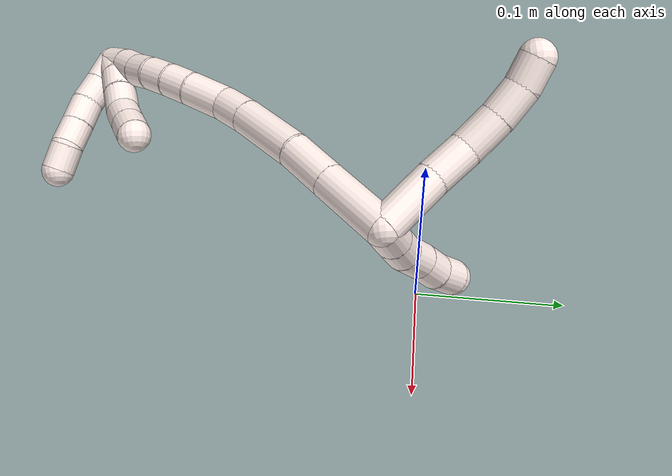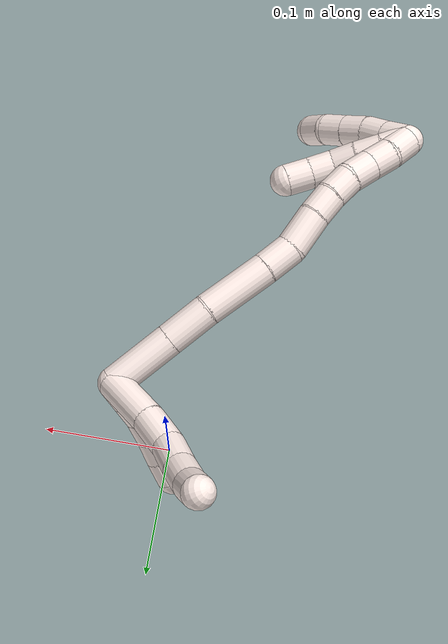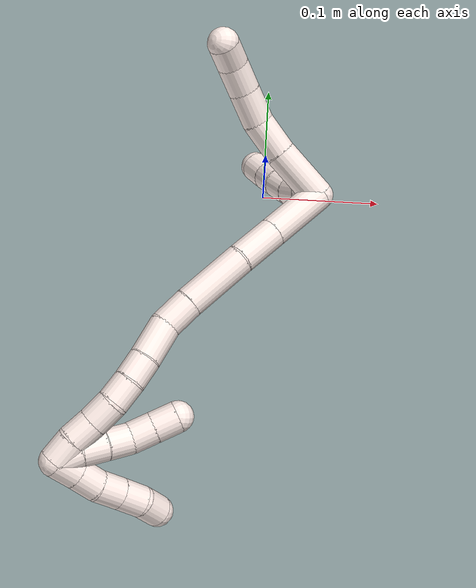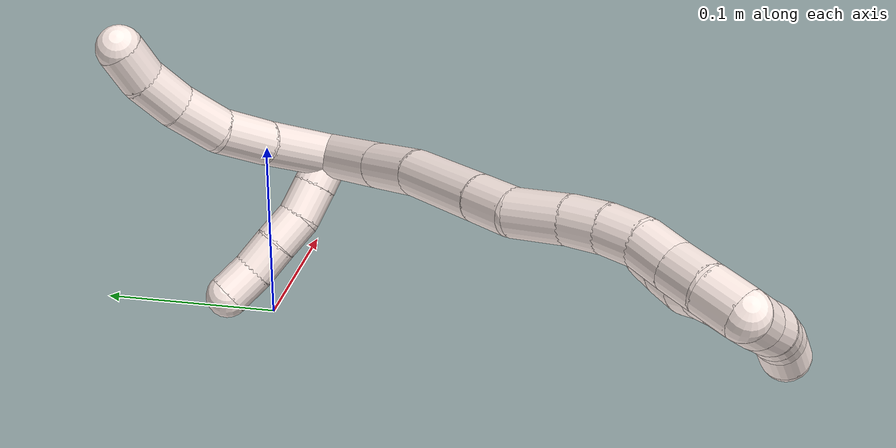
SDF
<sdf version="1.7">
 <world name="default">
  <model name="photoneo_s_sensor">
   <static>1</static>
   <pose>0 0 2 1.57079 1.57079 3.14159</pose>
   <link name="link">
    <inertial><mass>0.1</mass></inertial>
    <sensor name="sensor" type="depth">
     <update_rate>30</update_rate>
     <camera>
      <horizontal_fov>1.22</horizontal_fov>
      <image><width>1920</width><height>1200</height><format>B8G8R8</format></image>
      <clip><near>0.1</near><far>4</far></clip>
      <depth_camera><output>points</output></depth_camera>
     </camera>
     <plugin name="camera_plugin" filename="libgazebo_ros_depth_camera.so">
      <baseline>0.2</baseline>
      <alwaysOn>1</alwaysOn>
      <updateRate>0.0</updateRate>
      <cameraName>camera_ir</cameraName>
      <imageTopicName>/camera/color/image_raw</imageTopicName>
      <cameraInfoTopicName>/camera/color/camera_info</cameraInfoTopicName>
      <depthImageTopicName>/camera/depth/image_raw</depthImageTopicName>
      <depthImageCameraInfoTopicName>/camera/depth/camera_info</depthImageCameraInfoTopicName>
      <pointCloudTopicName>/camera/depth/points</pointCloudTopicName>
      <frameName>fr_optical</frameName>
      <pointCloudCutoff>0.1</pointCloudCutoff>
      <pointCloudCutoffMax>2.0</pointCloudCutoffMax>
      <distortionK1>0</distortionK1>
      <distortionK2>0</distortionK2>
      <distortionK3>0</distortionK3>
      <distortionT1>0</distortionT1>
      <distortionT2>0</distortionT2>
      <CxPrime>0</CxPrime>
      <Cx>0</Cx>
      <Cy>0</Cy>
      <focalLength>0</focalLength>
      <hackBaseline>0</hackBaseline>
     </plugin>
    </sensor>
   </link>
  </model>
  <model name="bin">
   <static>1</static>
   <link name="bottom">
    <collision name="collision-bottom">
     <pose>0 0 -0.01 0 -0 0</pose>
     <geometry><box><size>0.8 0.6 0.02</size></box></geometry>
     <surface>
      <friction><ode><mu>100</mu><mu2>100</mu2></ode></friction>
      <contact><collide_bitmask>65535</collide_bitmask></contact>
     </surface>
    </collision>
   </link>
   <link name="west_wall">
    <collision name="collision-west_wall">
     <pose>-0.41 0 0.1 0 -0 0</pose>
     <geometry><box><size>0.02 0.6 0.2</size></box></geometry>
     <surface>
      <friction><ode><mu>100</mu><mu2>100</mu2></ode></friction>
      <contact><collide_bitmask>65535</collide_bitmask></contact>
     </surface>
    </collision>
   </link>
   <link name="east_wall">
    <collision name="collision-east_wall">
     <pose>0.41 0 0.1 0 -0 0</pose>
     <geometry><box><size>0.02 0.6 0.2</size></box></geometry>
     <surface>
      <friction><ode><mu>100</mu><mu2>100</mu2></ode></friction>
      <contact><collide_bitmask>65535</collide_bitmask></contact>
     </surface>
    </collision>
   </link>
   <link name="south_wall">
    <collision name="collision-south_wall">
     <pose>0 -0.31 0.1 0 -0 0</pose>
     <geometry><box><size>0.8 0.02 0.2</size></box></geometry>
     <surface>
      <friction><ode><mu>100</mu><mu2>100</mu2></ode></friction>
      <contact><collide_bitmask>65535</collide_bitmask></contact>
     </surface>
    </collision>
   </link>
   <link name="north_wall">
    <collision name="collision-north_wall">
     <pose>0 0.31 0.1 0 -0 0</pose>
     <geometry><box><size>0.8 0.02 0.2</size></box></geometry>
     <surface>
      <friction><ode><mu>100</mu><mu2>100</mu2></ode></friction>
      <contact><collide_bitmask>65535</collide_bitmask></contact>
     </surface>
    </collision>
   </link>
  </model>
  <model name="11">
   <static>0</static>
   <link name="11">
    <collision name="collision-cylinder-e_1_2_8">
     <pose>-0.00382 0.017514 0.014615 -0.875393 -0.165944 0.077796</pose>
     <geometry><cylinder><radius>0.0125</radius><length>0.046256</length></cylinder></geometry>
     <surface>
      <friction><ode><mu>1.16</mu><mu2>1.16</mu2><slip1>0</slip1><slip2>0</slip2></ode></friction>
      <contact><ode><kp>1e+06</kp><kd>1</kd><max_vel>0</max_vel><min_depth>0.001</min_depth></ode></contact>
     </surface>
    </collision>
    <visual name="visual-cylinder-e_1_2_8">
     <pose>-0.00382 0.017514 0.014615 -0.875393 -0.165944 0.077796</pose>
     <geometry><cylinder><radius>0.0125</radius><length>0.046256</length></cylinder></geometry>
     <material><ambient>1 0.933333 0.909804 1</ambient></material>
    </visual>
    <collision name="collision-cylinder-e_2_8_9">
     <pose>-0.008887 0.04713 0.038228 -0.931425 -0.082434 0.041447</pose>
     <geometry><cylinder><radius>0.0125</radius><length>0.030266</length></cylinder></geometry>
     <surface>
      <friction><ode><mu>1.16</mu><mu2>1.16</mu2><slip1>0</slip1><slip2>0</slip2></ode></friction>
      <contact><ode><kp>1e+06</kp><kd>1</kd><max_vel>0</max_vel><min_depth>0.001</min_depth></ode></contact>
     </surface>
    </collision>
    <visual name="visual-cylinder-e_2_8_9">
     <pose>-0.008887 0.04713 0.038228 -0.931425 -0.082434 0.041447</pose>
     <geometry><cylinder><radius>0.0125</radius><length>0.030266</length></cylinder></geometry>
     <material><ambient>1 0.933333 0.909804 1</ambient></material>
    </visual>
    <collision name="collision-cylinder-e_3_9_10">
     <pose>-0.007493 0.070031 0.055895 -0.894415 0.188373 -0.090553</pose>
     <geometry><cylinder><radius>0.0125</radius><length>0.028192</length></cylinder></geometry>
     <surface>
      <friction><ode><mu>1.16</mu><mu2>1.16</mu2><slip1>0</slip1><slip2>0</slip2></ode></friction>
      <contact><ode><kp>1e+06</kp><kd>1</kd><max_vel>0</max_vel><min_depth>0.001</min_depth></ode></contact>
     </surface>
    </collision>
    <visual name="visual-cylinder-e_3_9_10">
     <pose>-0.007493 0.070031 0.055895 -0.894415 0.188373 -0.090553</pose>
     <geometry><cylinder><radius>0.0125</radius><length>0.028192</length></cylinder></geometry>
     <material><ambient>1 0.933333 0.909804 1</ambient></material>
    </visual>
    <collision name="collision-cylinder-e_4_10_11">
     <pose>-0.001681 0.089129 0.072949 -0.780236 0.262659 -0.108522</pose>
     <geometry><cylinder><radius>0.0125</radius><length>0.024435</length></cylinder></geometry>
     <surface>
      <friction><ode><mu>1.16</mu><mu2>1.16</mu2><slip1>0</slip1><slip2>0</slip2></ode></friction>
      <contact><ode><kp>1e+06</kp><kd>1</kd><max_vel>0</max_vel><min_depth>0.001</min_depth></ode></contact>
     </surface>
    </collision>
    <visual name="visual-cylinder-e_4_10_11">
     <pose>-0.001681 0.089129 0.072949 -0.780236 0.262659 -0.108522</pose>
     <geometry><cylinder><radius>0.0125</radius><length>0.024435</length></cylinder></geometry>
     <material><ambient>1 0.933333 0.909804 1</ambient></material>
    </visual>
    <collision name="collision-cylinder-e_5_11_6">
     <pose>0.005395 0.102529 0.089546 -0.555778 0.383835 -0.110748</pose>
     <geometry><cylinder><radius>0.0125</radius><length>0.02085</length></cylinder></geometry>
     <surface>
      <friction><ode><mu>1.16</mu><mu2>1.16</mu2><slip1>0</slip1><slip2>0</slip2></ode></friction>
      <contact><ode><kp>1e+06</kp><kd>1</kd><max_vel>0</max_vel><min_depth>0.001</min_depth></ode></contact>
     </surface>
    </collision>
    <visual name="visual-cylinder-e_5_11_6">
     <pose>0.005395 0.102529 0.089546 -0.555778 0.383835 -0.110748</pose>
     <geometry><cylinder><radius>0.0125</radius><length>0.02085</length></cylinder></geometry>
     <material><ambient>1 0.933333 0.909804 1</ambient></material>
    </visual>
    <collision name="collision-cylinder-e_1_2_12">
     <pose>-0.008629 0.004103 -0.002952 -2.19452 -1.04089 1.68257</pose>
     <geometry><cylinder><radius>0.0125</radius><length>0.02</length></cylinder></geometry>
     <surface>
      <friction><ode><mu>1.16</mu><mu2>1.16</mu2><slip1>0</slip1><slip2>0</slip2></ode></friction>
      <contact><ode><kp>1e+06</kp><kd>1</kd><max_vel>0</max_vel><min_depth>0.001</min_depth></ode></contact>
     </surface>
    </collision>
    <visual name="visual-cylinder-e_1_2_12">
     <pose>-0.008629 0.004103 -0.002952 -2.19452 -1.04089 1.68257</pose>
     <geometry><cylinder><radius>0.0125</radius><length>0.02</length></cylinder></geometry>
     <material><ambient>1 0.933333 0.909804 1</ambient></material>
    </visual>
    <collision name="collision-cylinder-e_2_12_13">
     <pose>-0.02584 0.01244 -0.008804 -2.17118 -1.03186 1.64373</pose>
     <geometry><cylinder><radius>0.0125</radius><length>0.02</length></cylinder></geometry>
     <surface>
      <friction><ode><mu>1.16</mu><mu2>1.16</mu2><slip1>0</slip1><slip2>0</slip2></ode></friction>
      <contact><ode><kp>1e+06</kp><kd>1</kd><max_vel>0</max_vel><min_depth>0.001</min_depth></ode></contact>
     </surface>
    </collision>
    <visual name="visual-cylinder-e_2_12_13">
     <pose>-0.02584 0.01244 -0.008804 -2.17118 -1.03186 1.64373</pose>
     <geometry><cylinder><radius>0.0125</radius><length>0.02</length></cylinder></geometry>
     <material><ambient>1 0.933333 0.909804 1</ambient></material>
    </visual>
    <collision name="collision-cylinder-e_3_13_14">
     <pose>-0.04182 0.023006 -0.013979 -1.91582 -0.832804 1.12281</pose>
     <geometry><cylinder><radius>0.0125</radius><length>0.02</length></cylinder></geometry>
     <surface>
      <friction><ode><mu>1.16</mu><mu2>1.16</mu2><slip1>0</slip1><slip2>0</slip2></ode></friction>
      <contact><ode><kp>1e+06</kp><kd>1</kd><max_vel>0</max_vel><min_depth>0.001</min_depth></ode></contact>
     </surface>
    </collision>
    <visual name="visual-cylinder-e_3_13_14">
     <pose>-0.04182 0.023006 -0.013979 -1.91582 -0.832804 1.12281</pose>
     <geometry><cylinder><radius>0.0125</radius><length>0.02</length></cylinder></geometry>
     <material><ambient>1 0.933333 0.909804 1</ambient></material>
    </visual>
    <collision name="collision-cylinder-e_4_14_15">
     <pose>-0.056413 0.035485 -0.019488 -2.05503 -0.80302 1.22555</pose>
     <geometry><cylinder><radius>0.0125</radius><length>0.02</length></cylinder></geometry>
     <surface>
      <friction><ode><mu>1.16</mu><mu2>1.16</mu2><slip1>0</slip1><slip2>0</slip2></ode></friction>
      <contact><ode><kp>1e+06</kp><kd>1</kd><max_vel>0</max_vel><min_depth>0.001</min_depth></ode></contact>
     </surface>
    </collision>
    <visual name="visual-cylinder-e_4_14_15">
     <pose>-0.056413 0.035485 -0.019488 -2.05503 -0.80302 1.22555</pose>
     <geometry><cylinder><radius>0.0125</radius><length>0.02</length></cylinder></geometry>
     <material><ambient>1 0.933333 0.909804 1</ambient></material>
    </visual>
    <collision name="collision-cylinder-e_5_15_5">
     <pose>-0.07054 0.048587 -0.02461 -1.83599 -0.765921 0.969795</pose>
     <geometry><cylinder><radius>0.0125</radius><length>0.02</length></cylinder></geometry>
     <surface>
      <friction><ode><mu>1.16</mu><mu2>1.16</mu2><slip1>0</slip1><slip2>0</slip2></ode></friction>
      <contact><ode><kp>1e+06</kp><kd>1</kd><max_vel>0</max_vel><min_depth>0.001</min_depth></ode></contact>
     </surface>
    </collision>
    <visual name="visual-cylinder-e_5_15_5">
     <pose>-0.07054 0.048587 -0.02461 -1.83599 -0.765921 0.969795</pose>
     <geometry><cylinder><radius>0.0125</radius><length>0.02</length></cylinder></geometry>
     <material><ambient>1 0.933333 0.909804 1</ambient></material>
    </visual>
    <collision name="collision-cylinder-e_1_2_16">
     <pose>-0.011893 -0.014055 0.018614 0.64675 -0.471547 -0.160682</pose>
     <geometry><cylinder><radius>0.0125</radius><length>0.052363</length></cylinder></geometry>
     <surface>
      <friction><ode><mu>1.16</mu><mu2>1.16</mu2><slip1>0</slip1><slip2>0</slip2></ode></friction>
      <contact><ode><kp>1e+06</kp><kd>1</kd><max_vel>0</max_vel><min_depth>0.001</min_depth></ode></contact>
     </surface>
    </collision>
    <visual name="visual-cylinder-e_1_2_16">
     <pose>-0.011893 -0.014055 0.018614 0.64675 -0.471547 -0.160682</pose>
     <geometry><cylinder><radius>0.0125</radius><length>0.052363</length></cylinder></geometry>
     <material><ambient>1 0.933333 0.909804 1</ambient></material>
    </visual>
    <collision name="collision-cylinder-e_2_16_17">
     <pose>-0.031738 -0.037642 0.049975 0.642084 -0.463291 -0.156561</pose>
     <geometry><cylinder><radius>0.0125</radius><length>0.035584</length></cylinder></geometry>
     <surface>
      <friction><ode><mu>1.16</mu><mu2>1.16</mu2><slip1>0</slip1><slip2>0</slip2></ode></friction>
      <contact><ode><kp>1e+06</kp><kd>1</kd><max_vel>0</max_vel><min_depth>0.001</min_depth></ode></contact>
     </surface>
    </collision>
    <visual name="visual-cylinder-e_2_16_17">
     <pose>-0.031738 -0.037642 0.049975 0.642084 -0.463291 -0.156561</pose>
     <geometry><cylinder><radius>0.0125</radius><length>0.035584</length></cylinder></geometry>
     <material><ambient>1 0.933333 0.909804 1</ambient></material>
    </visual>
    <collision name="collision-cylinder-e_3_17_18">
     <pose>-0.054438 -0.061686 0.079855 0.702748 -0.581184 -0.218389</pose>
     <geometry><cylinder><radius>0.0125</radius><length>0.053728</length></cylinder></geometry>
     <surface>
      <friction><ode><mu>1.16</mu><mu2>1.16</mu2><slip1>0</slip1><slip2>0</slip2></ode></friction>
      <contact><ode><kp>1e+06</kp><kd>1</kd><max_vel>0</max_vel><min_depth>0.001</min_depth></ode></contact>
     </surface>
    </collision>
    <visual name="visual-cylinder-e_3_17_18">
     <pose>-0.054438 -0.061686 0.079855 0.702748 -0.581184 -0.218389</pose>
     <geometry><cylinder><radius>0.0125</radius><length>0.053728</length></cylinder></geometry>
     <material><ambient>1 0.933333 0.909804 1</ambient></material>
    </visual>
    <collision name="collision-cylinder-e_4_18_19">
     <pose>-0.076149 -0.083596 0.104533 0.775611 -0.582628 -0.243754</pose>
     <geometry><cylinder><radius>0.0125</radius><length>0.025308</length></cylinder></geometry>
     <surface>
      <friction><ode><mu>1.16</mu><mu2>1.16</mu2><slip1>0</slip1><slip2>0</slip2></ode></friction>
      <contact><ode><kp>1e+06</kp><kd>1</kd><max_vel>0</max_vel><min_depth>0.001</min_depth></ode></contact>
     </surface>
    </collision>
    <visual name="visual-cylinder-e_4_18_19">
     <pose>-0.076149 -0.083596 0.104533 0.775611 -0.582628 -0.243754</pose>
     <geometry><cylinder><radius>0.0125</radius><length>0.025308</length></cylinder></geometry>
     <material><ambient>1 0.933333 0.909804 1</ambient></material>
    </visual>
    <collision name="collision-cylinder-e_5_19_20">
     <pose>-0.088317 -0.103011 0.120431 0.963302 -0.341705 -0.179885</pose>
     <geometry><cylinder><radius>0.0125</radius><length>0.031068</length></cylinder></geometry>
     <surface>
      <friction><ode><mu>1.16</mu><mu2>1.16</mu2><slip1>0</slip1><slip2>0</slip2></ode></friction>
      <contact><ode><kp>1e+06</kp><kd>1</kd><max_vel>0</max_vel><min_depth>0.001</min_depth></ode></contact>
     </surface>
    </collision>
    <visual name="visual-cylinder-e_5_19_20">
     <pose>-0.088317 -0.103011 0.120431 0.963302 -0.341705 -0.179885</pose>
     <geometry><cylinder><radius>0.0125</radius><length>0.031068</length></cylinder></geometry>
     <material><ambient>1 0.933333 0.909804 1</ambient></material>
    </visual>
    <collision name="collision-cylinder-e_6_20_21">
     <pose>-0.097877 -0.122644 0.134157 0.956448 -0.437184 -0.229287</pose>
     <geometry><cylinder><radius>0.0125</radius><length>0.020572</length></cylinder></geometry>
     <surface>
      <friction><ode><mu>1.16</mu><mu2>1.16</mu2><slip1>0</slip1><slip2>0</slip2></ode></friction>
      <contact><ode><kp>1e+06</kp><kd>1</kd><max_vel>0</max_vel><min_depth>0.001</min_depth></ode></contact>
     </surface>
    </collision>
    <visual name="visual-cylinder-e_6_20_21">
     <pose>-0.097877 -0.122644 0.134157 0.956448 -0.437184 -0.229287</pose>
     <geometry><cylinder><radius>0.0125</radius><length>0.020572</length></cylinder></geometry>
     <material><ambient>1 0.933333 0.909804 1</ambient></material>
    </visual>
    <collision name="collision-cylinder-e_7_21_22">
     <pose>-0.107682 -0.137243 0.144513 0.950994 -0.565762 -0.297133</pose>
     <geometry><cylinder><radius>0.0125</radius><length>0.020331</length></cylinder></geometry>
     <surface>
      <friction><ode><mu>1.16</mu><mu2>1.16</mu2><slip1>0</slip1><slip2>0</slip2></ode></friction>
      <contact><ode><kp>1e+06</kp><kd>1</kd><max_vel>0</max_vel><min_depth>0.001</min_depth></ode></contact>
     </surface>
    </collision>
    <visual name="visual-cylinder-e_7_21_22">
     <pose>-0.107682 -0.137243 0.144513 0.950994 -0.565762 -0.297133</pose>
     <geometry><cylinder><radius>0.0125</radius><length>0.020331</length></cylinder></geometry>
     <material><ambient>1 0.933333 0.909804 1</ambient></material>
    </visual>
    <collision name="collision-cylinder-e_8_22_23">
     <pose>-0.120547 -0.150023 0.153882 0.92317 -0.795657 -0.412137</pose>
     <geometry><cylinder><radius>0.0125</radius><length>0.020765</length></cylinder></geometry>
     <surface>
      <friction><ode><mu>1.16</mu><mu2>1.16</mu2><slip1>0</slip1><slip2>0</slip2></ode></friction>
      <contact><ode><kp>1e+06</kp><kd>1</kd><max_vel>0</max_vel><min_depth>0.001</min_depth></ode></contact>
     </surface>
    </collision>
    <visual name="visual-cylinder-e_8_22_23">
     <pose>-0.120547 -0.150023 0.153882 0.92317 -0.795657 -0.412137</pose>
     <geometry><cylinder><radius>0.0125</radius><length>0.020765</length></cylinder></geometry>
     <material><ambient>1 0.933333 0.909804 1</ambient></material>
    </visual>
    <collision name="collision-cylinder-e_9_23_24">
     <pose>-0.134887 -0.161076 0.163323 0.804834 -0.759204 -0.336414</pose>
     <geometry><cylinder><radius>0.0125</radius><length>0.020116</length></cylinder></geometry>
     <surface>
      <friction><ode><mu>1.16</mu><mu2>1.16</mu2><slip1>0</slip1><slip2>0</slip2></ode></friction>
      <contact><ode><kp>1e+06</kp><kd>1</kd><max_vel>0</max_vel><min_depth>0.001</min_depth></ode></contact>
     </surface>
    </collision>
    <visual name="visual-cylinder-e_9_23_24">
     <pose>-0.134887 -0.161076 0.163323 0.804834 -0.759204 -0.336414</pose>
     <geometry><cylinder><radius>0.0125</radius><length>0.020116</length></cylinder></geometry>
     <material><ambient>1 0.933333 0.909804 1</ambient></material>
    </visual>
    <collision name="collision-cylinder-e_10_24_1">
     <pose>-0.148732 -0.172664 0.17208 1.04194 -0.756621 -0.448488</pose>
     <geometry><cylinder><radius>0.0125</radius><length>0.020164</length></cylinder></geometry>
     <surface>
      <friction><ode><mu>1.16</mu><mu2>1.16</mu2><slip1>0</slip1><slip2>0</slip2></ode></friction>
      <contact><ode><kp>1e+06</kp><kd>1</kd><max_vel>0</max_vel><min_depth>0.001</min_depth></ode></contact>
     </surface>
    </collision>
    <visual name="visual-cylinder-e_10_24_1">
     <pose>-0.148732 -0.172664 0.17208 1.04194 -0.756621 -0.448488</pose>
     <geometry><cylinder><radius>0.0125</radius><length>0.020164</length></cylinder></geometry>
     <material><ambient>1 0.933333 0.909804 1</ambient></material>
    </visual>
    <collision name="collision-cylinder-e_1_1_25">
     <pose>-0.15435 -0.184189 0.167334 2.59005 0.130686 0.45449</pose>
     <geometry><cylinder><radius>0.0125</radius><length>0.02</length></cylinder></geometry>
     <surface>
      <friction><ode><mu>1.16</mu><mu2>1.16</mu2><slip1>0</slip1><slip2>0</slip2></ode></friction>
      <contact><ode><kp>1e+06</kp><kd>1</kd><max_vel>0</max_vel><min_depth>0.001</min_depth></ode></contact>
     </surface>
    </collision>
    <visual name="visual-cylinder-e_1_1_25">
     <pose>-0.15435 -0.184189 0.167334 2.59005 0.130686 0.45449</pose>
     <geometry><cylinder><radius>0.0125</radius><length>0.02</length></cylinder></geometry>
     <material><ambient>1 0.933333 0.909804 1</ambient></material>
    </visual>
    <collision name="collision-cylinder-e_2_25_26">
     <pose>-0.151603 -0.194898 0.150672 2.55066 0.144835 0.467949</pose>
     <geometry><cylinder><radius>0.0125</radius><length>0.02</length></cylinder></geometry>
     <surface>
      <friction><ode><mu>1.16</mu><mu2>1.16</mu2><slip1>0</slip1><slip2>0</slip2></ode></friction>
      <contact><ode><kp>1e+06</kp><kd>1</kd><max_vel>0</max_vel><min_depth>0.001</min_depth></ode></contact>
     </surface>
    </collision>
    <visual name="visual-cylinder-e_2_25_26">
     <pose>-0.151603 -0.194898 0.150672 2.55066 0.144835 0.467949</pose>
     <geometry><cylinder><radius>0.0125</radius><length>0.02</length></cylinder></geometry>
     <material><ambient>1 0.933333 0.909804 1</ambient></material>
    </visual>
    <collision name="collision-cylinder-e_3_26_27">
     <pose>-0.148211 -0.20427 0.133438 2.7372 0.196186 0.895125</pose>
     <geometry><cylinder><radius>0.0125</radius><length>0.02</length></cylinder></geometry>
     <surface>
      <friction><ode><mu>1.16</mu><mu2>1.16</mu2><slip1>0</slip1><slip2>0</slip2></ode></friction>
      <contact><ode><kp>1e+06</kp><kd>1</kd><max_vel>0</max_vel><min_depth>0.001</min_depth></ode></contact>
     </surface>
    </collision>
    <visual name="visual-cylinder-e_3_26_27">
     <pose>-0.148211 -0.20427 0.133438 2.7372 0.196186 0.895125</pose>
     <geometry><cylinder><radius>0.0125</radius><length>0.02</length></cylinder></geometry>
     <material><ambient>1 0.933333 0.909804 1</ambient></material>
    </visual>
    <collision name="collision-cylinder-e_4_27_28">
     <pose>-0.144332 -0.212143 0.115467 2.72018 0.194127 0.854422</pose>
     <geometry><cylinder><radius>0.0125</radius><length>0.02</length></cylinder></geometry>
     <surface>
      <friction><ode><mu>1.16</mu><mu2>1.16</mu2><slip1>0</slip1><slip2>0</slip2></ode></friction>
      <contact><ode><kp>1e+06</kp><kd>1</kd><max_vel>0</max_vel><min_depth>0.001</min_depth></ode></contact>
     </surface>
    </collision>
    <visual name="visual-cylinder-e_4_27_28">
     <pose>-0.144332 -0.212143 0.115467 2.72018 0.194127 0.854422</pose>
     <geometry><cylinder><radius>0.0125</radius><length>0.02</length></cylinder></geometry>
     <material><ambient>1 0.933333 0.909804 1</ambient></material>
    </visual>
    <collision name="collision-cylinder-e_5_28_4">
     <pose>-0.143512 -0.220241 0.097453 2.71802 -0.111089 -0.506107</pose>
     <geometry><cylinder><radius>0.0125</radius><length>0.02</length></cylinder></geometry>
     <surface>
      <friction><ode><mu>1.16</mu><mu2>1.16</mu2><slip1>0</slip1><slip2>0</slip2></ode></friction>
      <contact><ode><kp>1e+06</kp><kd>1</kd><max_vel>0</max_vel><min_depth>0.001</min_depth></ode></contact>
     </surface>
    </collision>
    <visual name="visual-cylinder-e_5_28_4">
     <pose>-0.143512 -0.220241 0.097453 2.71802 -0.111089 -0.506107</pose>
     <geometry><cylinder><radius>0.0125</radius><length>0.02</length></cylinder></geometry>
     <material><ambient>1 0.933333 0.909804 1</ambient></material>
    </visual>
    <collision name="collision-cylinder-e_1_1_29">
     <pose>-0.149749 -0.176753 0.168025 -2.86018 0.631533 -2.3234</pose>
     <geometry><cylinder><radius>0.0125</radius><length>0.02</length></cylinder></geometry>
     <surface>
      <friction><ode><mu>1.16</mu><mu2>1.16</mu2><slip1>0</slip1><slip2>0</slip2></ode></friction>
      <contact><ode><kp>1e+06</kp><kd>1</kd><max_vel>0</max_vel><min_depth>0.001</min_depth></ode></contact>
     </surface>
    </collision>
    <visual name="visual-cylinder-e_1_1_29">
     <pose>-0.149749 -0.176753 0.168025 -2.86018 0.631533 -2.3234</pose>
     <geometry><cylinder><radius>0.0125</radius><length>0.02</length></cylinder></geometry>
     <material><ambient>1 0.933333 0.909804 1</ambient></material>
    </visual>
    <collision name="collision-cylinder-e_2_29_30">
     <pose>-0.138926 -0.173368 0.15164 -3.00993 0.514291 -2.6503</pose>
     <geometry><cylinder><radius>0.0125</radius><length>0.02</length></cylinder></geometry>
     <surface>
      <friction><ode><mu>1.16</mu><mu2>1.16</mu2><slip1>0</slip1><slip2>0</slip2></ode></friction>
      <contact><ode><kp>1e+06</kp><kd>1</kd><max_vel>0</max_vel><min_depth>0.001</min_depth></ode></contact>
     </surface>
    </collision>
    <visual name="visual-cylinder-e_2_29_30">
     <pose>-0.138926 -0.173368 0.15164 -3.00993 0.514291 -2.6503</pose>
     <geometry><cylinder><radius>0.0125</radius><length>0.02</length></cylinder></geometry>
     <material><ambient>1 0.933333 0.909804 1</ambient></material>
    </visual>
    <collision name="collision-cylinder-e_3_30_31">
     <pose>-0.129683 -0.170903 0.134089 -2.99447 0.447109 -2.51467</pose>
     <geometry><cylinder><radius>0.0125</radius><length>0.02</length></cylinder></geometry>
     <surface>
      <friction><ode><mu>1.16</mu><mu2>1.16</mu2><slip1>0</slip1><slip2>0</slip2></ode></friction>
      <contact><ode><kp>1e+06</kp><kd>1</kd><max_vel>0</max_vel><min_depth>0.001</min_depth></ode></contact>
     </surface>
    </collision>
    <visual name="visual-cylinder-e_3_30_31">
     <pose>-0.129683 -0.170903 0.134089 -2.99447 0.447109 -2.51467</pose>
     <geometry><cylinder><radius>0.0125</radius><length>0.02</length></cylinder></geometry>
     <material><ambient>1 0.933333 0.909804 1</ambient></material>
    </visual>
    <collision name="collision-cylinder-e_4_31_32">
     <pose>-0.118618 -0.166908 0.118284 -2.7713 0.739762 -2.24161</pose>
     <geometry><cylinder><radius>0.0125</radius><length>0.02</length></cylinder></geometry>
     <surface>
      <friction><ode><mu>1.16</mu><mu2>1.16</mu2><slip1>0</slip1><slip2>0</slip2></ode></friction>
      <contact><ode><kp>1e+06</kp><kd>1</kd><max_vel>0</max_vel><min_depth>0.001</min_depth></ode></contact>
     </surface>
    </collision>
    <visual name="visual-cylinder-e_4_31_32">
     <pose>-0.118618 -0.166908 0.118284 -2.7713 0.739762 -2.24161</pose>
     <geometry><cylinder><radius>0.0125</radius><length>0.02</length></cylinder></geometry>
     <material><ambient>1 0.933333 0.909804 1</ambient></material>
    </visual>
    <collision name="collision-cylinder-e_5_32_3">
     <pose>-0.104805 -0.161592 0.104841 -2.75838 0.785563 -2.2658</pose>
     <geometry><cylinder><radius>0.0125</radius><length>0.02</length></cylinder></geometry>
     <surface>
      <friction><ode><mu>1.16</mu><mu2>1.16</mu2><slip1>0</slip1><slip2>0</slip2></ode></friction>
      <contact><ode><kp>1e+06</kp><kd>1</kd><max_vel>0</max_vel><min_depth>0.001</min_depth></ode></contact>
     </surface>
    </collision>
    <visual name="visual-cylinder-e_5_32_3">
     <pose>-0.104805 -0.161592 0.104841 -2.75838 0.785563 -2.2658</pose>
     <geometry><cylinder><radius>0.0125</radius><length>0.02</length></cylinder></geometry>
     <material><ambient>1 0.933333 0.909804 1</ambient></material>
    </visual>
    <collision name="collision-sphere-3">
     <pose>-0.097733 -0.158948 0.098284 0 -0 0</pose>
     <geometry><sphere><radius>0.0125</radius></sphere></geometry>
     <surface>
      <friction><ode><mu>1.16</mu><mu2>1.16</mu2><slip1>0</slip1><slip2>0</slip2></ode></friction>
      <contact><ode><kp>1e+06</kp><kd>1</kd><max_vel>0</max_vel><min_depth>0.001</min_depth></ode></contact>
     </surface>
    </collision>
    <visual name="visual-sphere-3">
     <pose>-0.097733 -0.158948 0.098284 0 -0 0</pose>
     <geometry><sphere><radius>0.0125</radius></sphere></geometry>
     <material><ambient>1 0.933333 0.909804 1</ambient></material>
    </visual>
    <collision name="collision-sphere-32">
     <pose>-0.111877 -0.164235 0.111398 0 -0 0</pose>
     <geometry><sphere><radius>0.0125</radius></sphere></geometry>
     <surface>
      <friction><ode><mu>1.16</mu><mu2>1.16</mu2><slip1>0</slip1><slip2>0</slip2></ode></friction>
      <contact><ode><kp>1e+06</kp><kd>1</kd><max_vel>0</max_vel><min_depth>0.001</min_depth></ode></contact>
     </surface>
    </collision>
    <visual name="visual-sphere-32">
     <pose>-0.111877 -0.164235 0.111398 0 -0 0</pose>
     <geometry><sphere><radius>0.0125</radius></sphere></geometry>
     <material><ambient>1 0.933333 0.909804 1</ambient></material>
    </visual>
    <collision name="collision-sphere-31">
     <pose>-0.12536 -0.169581 0.12517 0 -0 0</pose>
     <geometry><sphere><radius>0.0125</radius></sphere></geometry>
     <surface>
      <friction><ode><mu>1.16</mu><mu2>1.16</mu2><slip1>0</slip1><slip2>0</slip2></ode></friction>
      <contact><ode><kp>1e+06</kp><kd>1</kd><max_vel>0</max_vel><min_depth>0.001</min_depth></ode></contact>
     </surface>
    </collision>
    <visual name="visual-sphere-31">
     <pose>-0.12536 -0.169581 0.12517 0 -0 0</pose>
     <geometry><sphere><radius>0.0125</radius></sphere></geometry>
     <material><ambient>1 0.933333 0.909804 1</ambient></material>
    </visual>
    <collision name="collision-sphere-30">
     <pose>-0.134007 -0.172225 0.143009 0 -0 0</pose>
     <geometry><sphere><radius>0.0125</radius></sphere></geometry>
     <surface>
      <friction><ode><mu>1.16</mu><mu2>1.16</mu2><slip1>0</slip1><slip2>0</slip2></ode></friction>
      <contact><ode><kp>1e+06</kp><kd>1</kd><max_vel>0</max_vel><min_depth>0.001</min_depth></ode></contact>
     </surface>
    </collision>
    <visual name="visual-sphere-30">
     <pose>-0.134007 -0.172225 0.143009 0 -0 0</pose>
     <geometry><sphere><radius>0.0125</radius></sphere></geometry>
     <material><ambient>1 0.933333 0.909804 1</ambient></material>
    </visual>
    <collision name="collision-sphere-29">
     <pose>-0.143845 -0.174511 0.160271 0 -0 0</pose>
     <geometry><sphere><radius>0.0125</radius></sphere></geometry>
     <surface>
      <friction><ode><mu>1.16</mu><mu2>1.16</mu2><slip1>0</slip1><slip2>0</slip2></ode></friction>
      <contact><ode><kp>1e+06</kp><kd>1</kd><max_vel>0</max_vel><min_depth>0.001</min_depth></ode></contact>
     </surface>
    </collision>
    <visual name="visual-sphere-29">
     <pose>-0.143845 -0.174511 0.160271 0 -0 0</pose>
     <geometry><sphere><radius>0.0125</radius></sphere></geometry>
     <material><ambient>1 0.933333 0.909804 1</ambient></material>
    </visual>
    <collision name="collision-sphere-4">
     <pose>-0.14462 -0.224326 0.088393 0 -0 0</pose>
     <geometry><sphere><radius>0.0125</radius></sphere></geometry>
     <surface>
      <friction><ode><mu>1.16</mu><mu2>1.16</mu2><slip1>0</slip1><slip2>0</slip2></ode></friction>
      <contact><ode><kp>1e+06</kp><kd>1</kd><max_vel>0</max_vel><min_depth>0.001</min_depth></ode></contact>
     </surface>
    </collision>
    <visual name="visual-sphere-4">
     <pose>-0.14462 -0.224326 0.088393 0 -0 0</pose>
     <geometry><sphere><radius>0.0125</radius></sphere></geometry>
     <material><ambient>1 0.933333 0.909804 1</ambient></material>
    </visual>
    <collision name="collision-sphere-28">
     <pose>-0.142403 -0.216156 0.106513 0 -0 0</pose>
     <geometry><sphere><radius>0.0125</radius></sphere></geometry>
     <surface>
      <friction><ode><mu>1.16</mu><mu2>1.16</mu2><slip1>0</slip1><slip2>0</slip2></ode></friction>
      <contact><ode><kp>1e+06</kp><kd>1</kd><max_vel>0</max_vel><min_depth>0.001</min_depth></ode></contact>
     </surface>
    </collision>
    <visual name="visual-sphere-28">
     <pose>-0.142403 -0.216156 0.106513 0 -0 0</pose>
     <geometry><sphere><radius>0.0125</radius></sphere></geometry>
     <material><ambient>1 0.933333 0.909804 1</ambient></material>
    </visual>
    <collision name="collision-sphere-27">
     <pose>-0.146261 -0.208129 0.124421 0 -0 0</pose>
     <geometry><sphere><radius>0.0125</radius></sphere></geometry>
     <surface>
      <friction><ode><mu>1.16</mu><mu2>1.16</mu2><slip1>0</slip1><slip2>0</slip2></ode></friction>
      <contact><ode><kp>1e+06</kp><kd>1</kd><max_vel>0</max_vel><min_depth>0.001</min_depth></ode></contact>
     </surface>
    </collision>
    <visual name="visual-sphere-27">
     <pose>-0.146261 -0.208129 0.124421 0 -0 0</pose>
     <geometry><sphere><radius>0.0125</radius></sphere></geometry>
     <material><ambient>1 0.933333 0.909804 1</ambient></material>
    </visual>
    <collision name="collision-sphere-26">
     <pose>-0.15016 -0.200411 0.142455 0 -0 0</pose>
     <geometry><sphere><radius>0.0125</radius></sphere></geometry>
     <surface>
      <friction><ode><mu>1.16</mu><mu2>1.16</mu2><slip1>0</slip1><slip2>0</slip2></ode></friction>
      <contact><ode><kp>1e+06</kp><kd>1</kd><max_vel>0</max_vel><min_depth>0.001</min_depth></ode></contact>
     </surface>
    </collision>
    <visual name="visual-sphere-26">
     <pose>-0.15016 -0.200411 0.142455 0 -0 0</pose>
     <geometry><sphere><radius>0.0125</radius></sphere></geometry>
     <material><ambient>1 0.933333 0.909804 1</ambient></material>
    </visual>
    <collision name="collision-sphere-25">
     <pose>-0.153046 -0.189385 0.158889 0 -0 0</pose>
     <geometry><sphere><radius>0.0125</radius></sphere></geometry>
     <surface>
      <friction><ode><mu>1.16</mu><mu2>1.16</mu2><slip1>0</slip1><slip2>0</slip2></ode></friction>
      <contact><ode><kp>1e+06</kp><kd>1</kd><max_vel>0</max_vel><min_depth>0.001</min_depth></ode></contact>
     </surface>
    </collision>
    <visual name="visual-sphere-25">
     <pose>-0.153046 -0.189385 0.158889 0 -0 0</pose>
     <geometry><sphere><radius>0.0125</radius></sphere></geometry>
     <material><ambient>1 0.933333 0.909804 1</ambient></material>
    </visual>
    <collision name="collision-sphere-1">
     <pose>-0.155653 -0.178994 0.175779 0 -0 0</pose>
     <geometry><sphere><radius>0.0125</radius></sphere></geometry>
     <surface>
      <friction><ode><mu>1.16</mu><mu2>1.16</mu2><slip1>0</slip1><slip2>0</slip2></ode></friction>
      <contact><ode><kp>1e+06</kp><kd>1</kd><max_vel>0</max_vel><min_depth>0.001</min_depth></ode></contact>
     </surface>
    </collision>
    <visual name="visual-sphere-1">
     <pose>-0.155653 -0.178994 0.175779 0 -0 0</pose>
     <geometry><sphere><radius>0.0125</radius></sphere></geometry>
     <material><ambient>1 0.933333 0.909804 1</ambient></material>
    </visual>
    <collision name="collision-sphere-24">
     <pose>-0.141811 -0.166335 0.168381 0 -0 0</pose>
     <geometry><sphere><radius>0.0125</radius></sphere></geometry>
     <surface>
      <friction><ode><mu>1.16</mu><mu2>1.16</mu2><slip1>0</slip1><slip2>0</slip2></ode></friction>
      <contact><ode><kp>1e+06</kp><kd>1</kd><max_vel>0</max_vel><min_depth>0.001</min_depth></ode></contact>
     </surface>
    </collision>
    <visual name="visual-sphere-24">
     <pose>-0.141811 -0.166335 0.168381 0 -0 0</pose>
     <geometry><sphere><radius>0.0125</radius></sphere></geometry>
     <material><ambient>1 0.933333 0.909804 1</ambient></material>
    </visual>
    <collision name="collision-sphere-23">
     <pose>-0.127964 -0.155818 0.158265 0 -0 0</pose>
     <geometry><sphere><radius>0.0125</radius></sphere></geometry>
     <surface>
      <friction><ode><mu>1.16</mu><mu2>1.16</mu2><slip1>0</slip1><slip2>0</slip2></ode></friction>
      <contact><ode><kp>1e+06</kp><kd>1</kd><max_vel>0</max_vel><min_depth>0.001</min_depth></ode></contact>
     </surface>
    </collision>
    <visual name="visual-sphere-23">
     <pose>-0.127964 -0.155818 0.158265 0 -0 0</pose>
     <geometry><sphere><radius>0.0125</radius></sphere></geometry>
     <material><ambient>1 0.933333 0.909804 1</ambient></material>
    </visual>
    <collision name="collision-sphere-22">
     <pose>-0.113131 -0.144229 0.149498 0 -0 0</pose>
     <geometry><sphere><radius>0.0125</radius></sphere></geometry>
     <surface>
      <friction><ode><mu>1.16</mu><mu2>1.16</mu2><slip1>0</slip1><slip2>0</slip2></ode></friction>
      <contact><ode><kp>1e+06</kp><kd>1</kd><max_vel>0</max_vel><min_depth>0.001</min_depth></ode></contact>
     </surface>
    </collision>
    <visual name="visual-sphere-22">
     <pose>-0.113131 -0.144229 0.149498 0 -0 0</pose>
     <geometry><sphere><radius>0.0125</radius></sphere></geometry>
     <material><ambient>1 0.933333 0.909804 1</ambient></material>
    </visual>
    <collision name="collision-sphere-21">
     <pose>-0.102232 -0.130258 0.139529 0 -0 0</pose>
     <geometry><sphere><radius>0.0125</radius></sphere></geometry>
     <surface>
      <friction><ode><mu>1.16</mu><mu2>1.16</mu2><slip1>0</slip1><slip2>0</slip2></ode></friction>
      <contact><ode><kp>1e+06</kp><kd>1</kd><max_vel>0</max_vel><min_depth>0.001</min_depth></ode></contact>
     </surface>
    </collision>
    <visual name="visual-sphere-21">
     <pose>-0.102232 -0.130258 0.139529 0 -0 0</pose>
     <geometry><sphere><radius>0.0125</radius></sphere></geometry>
     <material><ambient>1 0.933333 0.909804 1</ambient></material>
    </visual>
    <collision name="collision-sphere-6">
     <pose>0.009299 0.107629 0.097758 0 -0 0</pose>
     <geometry><sphere><radius>0.0125</radius></sphere></geometry>
     <surface>
      <friction><ode><mu>1.16</mu><mu2>1.16</mu2><slip1>0</slip1><slip2>0</slip2></ode></friction>
      <contact><ode><kp>1e+06</kp><kd>1</kd><max_vel>0</max_vel><min_depth>0.001</min_depth></ode></contact>
     </surface>
    </collision>
    <visual name="visual-sphere-6">
     <pose>0.009299 0.107629 0.097758 0 -0 0</pose>
     <geometry><sphere><radius>0.0125</radius></sphere></geometry>
     <material><ambient>1 0.933333 0.909804 1</ambient></material>
    </visual>
    <collision name="collision-sphere-11">
     <pose>0.001491 0.097429 0.081334 0 -0 0</pose>
     <geometry><sphere><radius>0.0125</radius></sphere></geometry>
     <surface>
      <friction><ode><mu>1.16</mu><mu2>1.16</mu2><slip1>0</slip1><slip2>0</slip2></ode></friction>
      <contact><ode><kp>1e+06</kp><kd>1</kd><max_vel>0</max_vel><min_depth>0.001</min_depth></ode></contact>
     </surface>
    </collision>
    <visual name="visual-sphere-11">
     <pose>0.001491 0.097429 0.081334 0 -0 0</pose>
     <geometry><sphere><radius>0.0125</radius></sphere></geometry>
     <material><ambient>1 0.933333 0.909804 1</ambient></material>
    </visual>
    <collision name="collision-sphere-10">
     <pose>-0.004854 0.080829 0.064563 0 -0 0</pose>
     <geometry><sphere><radius>0.0125</radius></sphere></geometry>
     <surface>
      <friction><ode><mu>1.16</mu><mu2>1.16</mu2><slip1>0</slip1><slip2>0</slip2></ode></friction>
      <contact><ode><kp>1e+06</kp><kd>1</kd><max_vel>0</max_vel><min_depth>0.001</min_depth></ode></contact>
     </surface>
    </collision>
    <visual name="visual-sphere-10">
     <pose>-0.004854 0.080829 0.064563 0 -0 0</pose>
     <geometry><sphere><radius>0.0125</radius></sphere></geometry>
     <material><ambient>1 0.933333 0.909804 1</ambient></material>
    </visual>
    <collision name="collision-sphere-9">
     <pose>-0.010133 0.059233 0.047228 0 -0 0</pose>
     <geometry><sphere><radius>0.0125</radius></sphere></geometry>
     <surface>
      <friction><ode><mu>1.16</mu><mu2>1.16</mu2><slip1>0</slip1><slip2>0</slip2></ode></friction>
      <contact><ode><kp>1e+06</kp><kd>1</kd><max_vel>0</max_vel><min_depth>0.001</min_depth></ode></contact>
     </surface>
    </collision>
    <visual name="visual-sphere-9">
     <pose>-0.010133 0.059233 0.047228 0 -0 0</pose>
     <geometry><sphere><radius>0.0125</radius></sphere></geometry>
     <material><ambient>1 0.933333 0.909804 1</ambient></material>
    </visual>
    <collision name="collision-sphere-2">
     <geometry><sphere><radius>0.0125</radius></sphere></geometry>
     <surface>
      <friction><ode><mu>1.16</mu><mu2>1.16</mu2><slip1>0</slip1><slip2>0</slip2></ode></friction>
      <contact><ode><kp>1e+06</kp><kd>1</kd><max_vel>0</max_vel><min_depth>0.001</min_depth></ode></contact>
     </surface>
    </collision>
    <visual name="visual-sphere-2">
     <geometry><sphere><radius>0.0125</radius></sphere></geometry>
     <material><ambient>1 0.933333 0.909804 1</ambient></material>
    </visual>
    <collision name="collision-sphere-19">
     <pose>-0.083112 -0.090994 0.112077 0 -0 0</pose>
     <geometry><sphere><radius>0.0125</radius></sphere></geometry>
     <surface>
      <friction><ode><mu>1.16</mu><mu2>1.16</mu2><slip1>0</slip1><slip2>0</slip2></ode></friction>
      <contact><ode><kp>1e+06</kp><kd>1</kd><max_vel>0</max_vel><min_depth>0.001</min_depth></ode></contact>
     </surface>
    </collision>
    <visual name="visual-sphere-19">
     <pose>-0.083112 -0.090994 0.112077 0 -0 0</pose>
     <geometry><sphere><radius>0.0125</radius></sphere></geometry>
     <material><ambient>1 0.933333 0.909804 1</ambient></material>
    </visual>
    <collision name="collision-sphere-8">
     <pose>-0.007641 0.035028 0.029229 0 -0 0</pose>
     <geometry><sphere><radius>0.0125</radius></sphere></geometry>
     <surface>
      <friction><ode><mu>1.16</mu><mu2>1.16</mu2><slip1>0</slip1><slip2>0</slip2></ode></friction>
      <contact><ode><kp>1e+06</kp><kd>1</kd><max_vel>0</max_vel><min_depth>0.001</min_depth></ode></contact>
     </surface>
    </collision>
    <visual name="visual-sphere-8">
     <pose>-0.007641 0.035028 0.029229 0 -0 0</pose>
     <geometry><sphere><radius>0.0125</radius></sphere></geometry>
     <material><ambient>1 0.933333 0.909804 1</ambient></material>
    </visual>
    <collision name="collision-sphere-12">
     <pose>-0.017257 0.008206 -0.005904 0 -0 0</pose>
     <geometry><sphere><radius>0.0125</radius></sphere></geometry>
     <surface>
      <friction><ode><mu>1.16</mu><mu2>1.16</mu2><slip1>0</slip1><slip2>0</slip2></ode></friction>
      <contact><ode><kp>1e+06</kp><kd>1</kd><max_vel>0</max_vel><min_depth>0.001</min_depth></ode></contact>
     </surface>
    </collision>
    <visual name="visual-sphere-12">
     <pose>-0.017257 0.008206 -0.005904 0 -0 0</pose>
     <geometry><sphere><radius>0.0125</radius></sphere></geometry>
     <material><ambient>1 0.933333 0.909804 1</ambient></material>
    </visual>
    <collision name="collision-sphere-13">
     <pose>-0.034422 0.016675 -0.011703 0 -0 0</pose>
     <geometry><sphere><radius>0.0125</radius></sphere></geometry>
     <surface>
      <friction><ode><mu>1.16</mu><mu2>1.16</mu2><slip1>0</slip1><slip2>0</slip2></ode></friction>
      <contact><ode><kp>1e+06</kp><kd>1</kd><max_vel>0</max_vel><min_depth>0.001</min_depth></ode></contact>
     </surface>
    </collision>
    <visual name="visual-sphere-13">
     <pose>-0.034422 0.016675 -0.011703 0 -0 0</pose>
     <geometry><sphere><radius>0.0125</radius></sphere></geometry>
     <material><ambient>1 0.933333 0.909804 1</ambient></material>
    </visual>
    <collision name="collision-sphere-14">
     <pose>-0.049219 0.029338 -0.016254 0 -0 0</pose>
     <geometry><sphere><radius>0.0125</radius></sphere></geometry>
     <surface>
      <friction><ode><mu>1.16</mu><mu2>1.16</mu2><slip1>0</slip1><slip2>0</slip2></ode></friction>
      <contact><ode><kp>1e+06</kp><kd>1</kd><max_vel>0</max_vel><min_depth>0.001</min_depth></ode></contact>
     </surface>
    </collision>
    <visual name="visual-sphere-14">
     <pose>-0.049219 0.029338 -0.016254 0 -0 0</pose>
     <geometry><sphere><radius>0.0125</radius></sphere></geometry>
     <material><ambient>1 0.933333 0.909804 1</ambient></material>
    </visual>
    <collision name="collision-sphere-15">
     <pose>-0.063608 0.041632 -0.022721 0 -0 0</pose>
     <geometry><sphere><radius>0.0125</radius></sphere></geometry>
     <surface>
      <friction><ode><mu>1.16</mu><mu2>1.16</mu2><slip1>0</slip1><slip2>0</slip2></ode></friction>
      <contact><ode><kp>1e+06</kp><kd>1</kd><max_vel>0</max_vel><min_depth>0.001</min_depth></ode></contact>
     </surface>
    </collision>
    <visual name="visual-sphere-15">
     <pose>-0.063608 0.041632 -0.022721 0 -0 0</pose>
     <geometry><sphere><radius>0.0125</radius></sphere></geometry>
     <material><ambient>1 0.933333 0.909804 1</ambient></material>
    </visual>
    <collision name="collision-sphere-5">
     <pose>-0.077472 0.055543 -0.026499 0 -0 0</pose>
     <geometry><sphere><radius>0.0125</radius></sphere></geometry>
     <surface>
      <friction><ode><mu>1.16</mu><mu2>1.16</mu2><slip1>0</slip1><slip2>0</slip2></ode></friction>
      <contact><ode><kp>1e+06</kp><kd>1</kd><max_vel>0</max_vel><min_depth>0.001</min_depth></ode></contact>
     </surface>
    </collision>
    <visual name="visual-sphere-5">
     <pose>-0.077472 0.055543 -0.026499 0 -0 0</pose>
     <geometry><sphere><radius>0.0125</radius></sphere></geometry>
     <material><ambient>1 0.933333 0.909804 1</ambient></material>
    </visual>
    <collision name="collision-sphere-16">
     <pose>-0.023787 -0.02811 0.037228 0 -0 0</pose>
     <geometry><sphere><radius>0.0125</radius></sphere></geometry>
     <surface>
      <friction><ode><mu>1.16</mu><mu2>1.16</mu2><slip1>0</slip1><slip2>0</slip2></ode></friction>
      <contact><ode><kp>1e+06</kp><kd>1</kd><max_vel>0</max_vel><min_depth>0.001</min_depth></ode></contact>
     </surface>
    </collision>
    <visual name="visual-sphere-16">
     <pose>-0.023787 -0.02811 0.037228 0 -0 0</pose>
     <geometry><sphere><radius>0.0125</radius></sphere></geometry>
     <material><ambient>1 0.933333 0.909804 1</ambient></material>
    </visual>
    <collision name="collision-sphere-17">
     <pose>-0.039689 -0.047174 0.062721 0 -0 0</pose>
     <geometry><sphere><radius>0.0125</radius></sphere></geometry>
     <surface>
      <friction><ode><mu>1.16</mu><mu2>1.16</mu2><slip1>0</slip1><slip2>0</slip2></ode></friction>
      <contact><ode><kp>1e+06</kp><kd>1</kd><max_vel>0</max_vel><min_depth>0.001</min_depth></ode></contact>
     </surface>
    </collision>
    <visual name="visual-sphere-17">
     <pose>-0.039689 -0.047174 0.062721 0 -0 0</pose>
     <geometry><sphere><radius>0.0125</radius></sphere></geometry>
     <material><ambient>1 0.933333 0.909804 1</ambient></material>
    </visual>
    <collision name="collision-sphere-18">
     <pose>-0.069187 -0.076198 0.096988 0 -0 0</pose>
     <geometry><sphere><radius>0.0125</radius></sphere></geometry>
     <surface>
      <friction><ode><mu>1.16</mu><mu2>1.16</mu2><slip1>0</slip1><slip2>0</slip2></ode></friction>
      <contact><ode><kp>1e+06</kp><kd>1</kd><max_vel>0</max_vel><min_depth>0.001</min_depth></ode></contact>
     </surface>
    </collision>
    <visual name="visual-sphere-18">
     <pose>-0.069187 -0.076198 0.096988 0 -0 0</pose>
     <geometry><sphere><radius>0.0125</radius></sphere></geometry>
     <material><ambient>1 0.933333 0.909804 1</ambient></material>
    </visual>
    <collision name="collision-sphere-20">
     <pose>-0.093522 -0.115029 0.128786 0 -0 0</pose>
     <geometry><sphere><radius>0.0125</radius></sphere></geometry>
     <surface>
      <friction><ode><mu>1.16</mu><mu2>1.16</mu2><slip1>0</slip1><slip2>0</slip2></ode></friction>
      <contact><ode><kp>1e+06</kp><kd>1</kd><max_vel>0</max_vel><min_depth>0.001</min_depth></ode></contact>
     </surface>
    </collision>
    <visual name="visual-sphere-20">
     <pose>-0.093522 -0.115029 0.128786 0 -0 0</pose>
     <geometry><sphere><radius>0.0125</radius></sphere></geometry>
     <material><ambient>1 0.933333 0.909804 1</ambient></material>
    </visual>
    <inertial>
     <pose>-0.072123 -0.06955 0.082088 0 -0 0</pose>
     <mass>0.75</mass>
     <inertia><ixx>4.5e-05</ixx><ixy>0</ixy><ixz>0</ixz><iyy>4.8e-05</iyy><iyz>0</iyz><izz>4.2e-05</izz></inertia>
    </inertial>
   </link>
   <pose>0.043528 -0.023947 0.080887 0.057366 -0.741156 0.184452</pose>
  </model>
 </world>
</sdf>
